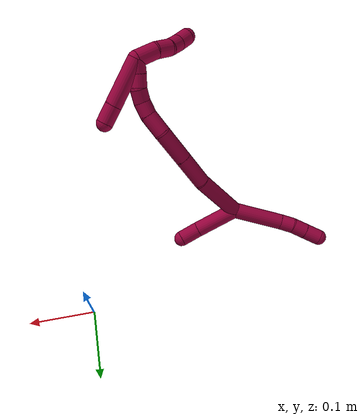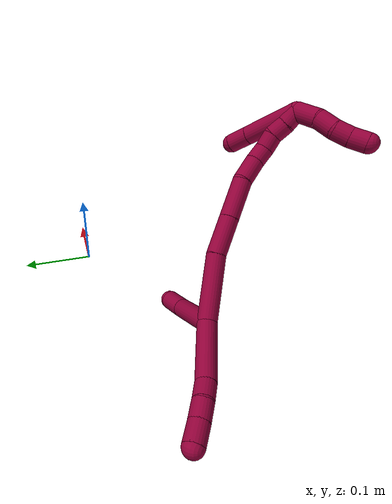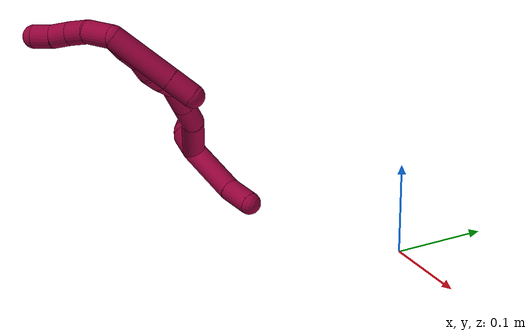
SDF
<sdf version="1.7">
 <world name="default">
  <model name="8">
   <static>0</static>
   <link name="8">
    <collision name="collision-cylinder-e_1_2_8">
     <pose>-0.01663 0.031286 0.018499 -1.03681 -0.429113 0.247343</pose>
     <geometry><cylinder><radius>0.0125</radius><length>0.079941</length></cylinder></geometry>
     <surface>
      <friction><ode><mu>1.16</mu><mu2>1.16</mu2><slip1>0</slip1><slip2>0</slip2></ode></friction>
      <contact><ode><kp>1e+06</kp><kd>1</kd><max_vel>0</max_vel><min_depth>0.001</min_depth></ode></contact>
     </surface>
    </collision>
    <visual name="visual-cylinder-e_1_2_8">
     <pose>-0.01663 0.031286 0.018499 -1.03681 -0.429113 0.247343</pose>
     <geometry><cylinder><radius>0.0125</radius><length>0.079941</length></cylinder></geometry>
     <material><ambient>0.584314 0 0.227451 1</ambient></material>
    </visual>
    <collision name="collision-cylinder-e_2_8_9">
     <pose>-0.03661 0.071938 0.041325 -1.138 -0.313948 0.201766</pose>
     <geometry><cylinder><radius>0.0125</radius><length>0.021693</length></cylinder></geometry>
     <surface>
      <friction><ode><mu>1.16</mu><mu2>1.16</mu2><slip1>0</slip1><slip2>0</slip2></ode></friction>
      <contact><ode><kp>1e+06</kp><kd>1</kd><max_vel>0</max_vel><min_depth>0.001</min_depth></ode></contact>
     </surface>
    </collision>
    <visual name="visual-cylinder-e_2_8_9">
     <pose>-0.03661 0.071938 0.041325 -1.138 -0.313948 0.201766</pose>
     <geometry><cylinder><radius>0.0125</radius><length>0.021693</length></cylinder></geometry>
     <material><ambient>0.584314 0 0.227451 1</ambient></material>
    </visual>
    <collision name="collision-cylinder-e_3_9_10">
     <pose>-0.045161 0.090795 0.04905 -1.227 -0.476337 0.338625</pose>
     <geometry><cylinder><radius>0.0125</radius><length>0.022689</length></cylinder></geometry>
     <surface>
      <friction><ode><mu>1.16</mu><mu2>1.16</mu2><slip1>0</slip1><slip2>0</slip2></ode></friction>
      <contact><ode><kp>1e+06</kp><kd>1</kd><max_vel>0</max_vel><min_depth>0.001</min_depth></ode></contact>
     </surface>
    </collision>
    <visual name="visual-cylinder-e_3_9_10">
     <pose>-0.045161 0.090795 0.04905 -1.227 -0.476337 0.338625</pose>
     <geometry><cylinder><radius>0.0125</radius><length>0.022689</length></cylinder></geometry>
     <material><ambient>0.584314 0 0.227451 1</ambient></material>
    </visual>
    <collision name="collision-cylinder-e_4_10_6">
     <pose>-0.05547 0.111454 0.056195 -1.24711 -0.409076 0.296232</pose>
     <geometry><cylinder><radius>0.0125</radius><length>0.025677</length></cylinder></geometry>
     <surface>
      <friction><ode><mu>1.16</mu><mu2>1.16</mu2><slip1>0</slip1><slip2>0</slip2></ode></friction>
      <contact><ode><kp>1e+06</kp><kd>1</kd><max_vel>0</max_vel><min_depth>0.001</min_depth></ode></contact>
     </surface>
    </collision>
    <visual name="visual-cylinder-e_4_10_6">
     <pose>-0.05547 0.111454 0.056195 -1.24711 -0.409076 0.296232</pose>
     <geometry><cylinder><radius>0.0125</radius><length>0.025677</length></cylinder></geometry>
     <material><ambient>0.584314 0 0.227451 1</ambient></material>
    </visual>
    <collision name="collision-cylinder-e_1_2_11">
     <pose>-0.003908 -0.014923 -0.030699 2.68913 -0.113985 -0.485957</pose>
     <geometry><cylinder><radius>0.0125</radius><length>0.068714</length></cylinder></geometry>
     <surface>
      <friction><ode><mu>1.16</mu><mu2>1.16</mu2><slip1>0</slip1><slip2>0</slip2></ode></friction>
      <contact><ode><kp>1e+06</kp><kd>1</kd><max_vel>0</max_vel><min_depth>0.001</min_depth></ode></contact>
     </surface>
    </collision>
    <visual name="visual-cylinder-e_1_2_11">
     <pose>-0.003908 -0.014923 -0.030699 2.68913 -0.113985 -0.485957</pose>
     <geometry><cylinder><radius>0.0125</radius><length>0.068714</length></cylinder></geometry>
     <material><ambient>0.584314 0 0.227451 1</ambient></material>
    </visual>
    <collision name="collision-cylinder-e_2_11_5">
     <pose>-0.007147 -0.035303 -0.076043 2.78492 0.04275 0.236106</pose>
     <geometry><cylinder><radius>0.0125</radius><length>0.031286</length></cylinder></geometry>
     <surface>
      <friction><ode><mu>1.16</mu><mu2>1.16</mu2><slip1>0</slip1><slip2>0</slip2></ode></friction>
      <contact><ode><kp>1e+06</kp><kd>1</kd><max_vel>0</max_vel><min_depth>0.001</min_depth></ode></contact>
     </surface>
    </collision>
    <visual name="visual-cylinder-e_2_11_5">
     <pose>-0.007147 -0.035303 -0.076043 2.78492 0.04275 0.236106</pose>
     <geometry><cylinder><radius>0.0125</radius><length>0.031286</length></cylinder></geometry>
     <material><ambient>0.584314 0 0.227451 1</ambient></material>
    </visual>
    <collision name="collision-cylinder-e_1_2_12">
     <pose>0.034798 -0.023344 -0.004781 1.77279 0.970374 1.14731</pose>
     <geometry><cylinder><radius>0.0125</radius><length>0.084349</length></cylinder></geometry>
     <surface>
      <friction><ode><mu>1.16</mu><mu2>1.16</mu2><slip1>0</slip1><slip2>0</slip2></ode></friction>
      <contact><ode><kp>1e+06</kp><kd>1</kd><max_vel>0</max_vel><min_depth>0.001</min_depth></ode></contact>
     </surface>
    </collision>
    <visual name="visual-cylinder-e_1_2_12">
     <pose>0.034798 -0.023344 -0.004781 1.77279 0.970374 1.14731</pose>
     <geometry><cylinder><radius>0.0125</radius><length>0.084349</length></cylinder></geometry>
     <material><ambient>0.584314 0 0.227451 1</ambient></material>
    </visual>
    <collision name="collision-cylinder-e_2_12_13">
     <pose>0.088892 -0.062273 -0.007876 1.4631 0.888531 0.807655</pose>
     <geometry><cylinder><radius>0.0125</radius><length>0.049722</length></cylinder></geometry>
     <surface>
      <friction><ode><mu>1.16</mu><mu2>1.16</mu2><slip1>0</slip1><slip2>0</slip2></ode></friction>
      <contact><ode><kp>1e+06</kp><kd>1</kd><max_vel>0</max_vel><min_depth>0.001</min_depth></ode></contact>
     </surface>
    </collision>
    <visual name="visual-cylinder-e_2_12_13">
     <pose>0.088892 -0.062273 -0.007876 1.4631 0.888531 0.807655</pose>
     <geometry><cylinder><radius>0.0125</radius><length>0.049722</length></cylinder></geometry>
     <material><ambient>0.584314 0 0.227451 1</ambient></material>
    </visual>
    <collision name="collision-cylinder-e_3_13_14">
     <pose>0.128214 -0.094047 -0.00445 1.46365 0.888158 0.80771</pose>
     <geometry><cylinder><radius>0.0125</radius><length>0.051619</length></cylinder></geometry>
     <surface>
      <friction><ode><mu>1.16</mu><mu2>1.16</mu2><slip1>0</slip1><slip2>0</slip2></ode></friction>
      <contact><ode><kp>1e+06</kp><kd>1</kd><max_vel>0</max_vel><min_depth>0.001</min_depth></ode></contact>
     </surface>
    </collision>
    <visual name="visual-cylinder-e_3_13_14">
     <pose>0.128214 -0.094047 -0.00445 1.46365 0.888158 0.80771</pose>
     <geometry><cylinder><radius>0.0125</radius><length>0.051619</length></cylinder></geometry>
     <material><ambient>0.584314 0 0.227451 1</ambient></material>
    </visual>
    <collision name="collision-cylinder-e_4_14_15">
     <pose>0.157897 -0.123248 -0.000323 1.38943 0.63056 0.530754</pose>
     <geometry><cylinder><radius>0.0125</radius><length>0.032759</length></cylinder></geometry>
     <surface>
      <friction><ode><mu>1.16</mu><mu2>1.16</mu2><slip1>0</slip1><slip2>0</slip2></ode></friction>
      <contact><ode><kp>1e+06</kp><kd>1</kd><max_vel>0</max_vel><min_depth>0.001</min_depth></ode></contact>
     </surface>
    </collision>
    <visual name="visual-cylinder-e_4_14_15">
     <pose>0.157897 -0.123248 -0.000323 1.38943 0.63056 0.530754</pose>
     <geometry><cylinder><radius>0.0125</radius><length>0.032759</length></cylinder></geometry>
     <material><ambient>0.584314 0 0.227451 1</ambient></material>
    </visual>
    <collision name="collision-cylinder-e_5_15_16">
     <pose>0.174354 -0.143597 0.005686 1.11217 0.69332 0.441714</pose>
     <geometry><cylinder><radius>0.0125</radius><length>0.021276</length></cylinder></geometry>
     <surface>
      <friction><ode><mu>1.16</mu><mu2>1.16</mu2><slip1>0</slip1><slip2>0</slip2></ode></friction>
      <contact><ode><kp>1e+06</kp><kd>1</kd><max_vel>0</max_vel><min_depth>0.001</min_depth></ode></contact>
     </surface>
    </collision>
    <visual name="visual-cylinder-e_5_15_16">
     <pose>0.174354 -0.143597 0.005686 1.11217 0.69332 0.441714</pose>
     <geometry><cylinder><radius>0.0125</radius><length>0.021276</length></cylinder></geometry>
     <material><ambient>0.584314 0 0.227451 1</ambient></material>
    </visual>
    <collision name="collision-cylinder-e_6_16_17">
     <pose>0.189132 -0.155337 0.01359 0.79932 0.91482 0.409985</pose>
     <geometry><cylinder><radius>0.0125</radius><length>0.020139</length></cylinder></geometry>
     <surface>
      <friction><ode><mu>1.16</mu><mu2>1.16</mu2><slip1>0</slip1><slip2>0</slip2></ode></friction>
      <contact><ode><kp>1e+06</kp><kd>1</kd><max_vel>0</max_vel><min_depth>0.001</min_depth></ode></contact>
     </surface>
    </collision>
    <visual name="visual-cylinder-e_6_16_17">
     <pose>0.189132 -0.155337 0.01359 0.79932 0.91482 0.409985</pose>
     <geometry><cylinder><radius>0.0125</radius><length>0.020139</length></cylinder></geometry>
     <material><ambient>0.584314 0 0.227451 1</ambient></material>
    </visual>
    <collision name="collision-cylinder-e_7_17_18">
     <pose>0.202878 -0.16425 0.02478 0.578429 0.610023 0.186818</pose>
     <geometry><cylinder><radius>0.0125</radius><length>0.020132</length></cylinder></geometry>
     <surface>
      <friction><ode><mu>1.16</mu><mu2>1.16</mu2><slip1>0</slip1><slip2>0</slip2></ode></friction>
      <contact><ode><kp>1e+06</kp><kd>1</kd><max_vel>0</max_vel><min_depth>0.001</min_depth></ode></contact>
     </surface>
    </collision>
    <visual name="visual-cylinder-e_7_17_18">
     <pose>0.202878 -0.16425 0.02478 0.578429 0.610023 0.186818</pose>
     <geometry><cylinder><radius>0.0125</radius><length>0.020132</length></cylinder></geometry>
     <material><ambient>0.584314 0 0.227451 1</ambient></material>
    </visual>
    <collision name="collision-cylinder-e_8_18_1">
     <pose>0.2156 -0.173052 0.037454 0.639837 0.769079 0.266555</pose>
     <geometry><cylinder><radius>0.0125</radius><length>0.020004</length></cylinder></geometry>
     <surface>
      <friction><ode><mu>1.16</mu><mu2>1.16</mu2><slip1>0</slip1><slip2>0</slip2></ode></friction>
      <contact><ode><kp>1e+06</kp><kd>1</kd><max_vel>0</max_vel><min_depth>0.001</min_depth></ode></contact>
     </surface>
    </collision>
    <visual name="visual-cylinder-e_8_18_1">
     <pose>0.2156 -0.173052 0.037454 0.639837 0.769079 0.266555</pose>
     <geometry><cylinder><radius>0.0125</radius><length>0.020004</length></cylinder></geometry>
     <material><ambient>0.584314 0 0.227451 1</ambient></material>
    </visual>
    <collision name="collision-cylinder-e_1_1_19">
     <pose>0.217447 -0.174183 0.058643 -0.202044 -0.313765 0.032066</pose>
     <geometry><cylinder><radius>0.0125</radius><length>0.033105</length></cylinder></geometry>
     <surface>
      <friction><ode><mu>1.16</mu><mu2>1.16</mu2><slip1>0</slip1><slip2>0</slip2></ode></friction>
      <contact><ode><kp>1e+06</kp><kd>1</kd><max_vel>0</max_vel><min_depth>0.001</min_depth></ode></contact>
     </surface>
    </collision>
    <visual name="visual-cylinder-e_1_1_19">
     <pose>0.217447 -0.174183 0.058643 -0.202044 -0.313765 0.032066</pose>
     <geometry><cylinder><radius>0.0125</radius><length>0.033105</length></cylinder></geometry>
     <material><ambient>0.584314 0 0.227451 1</ambient></material>
    </visual>
    <collision name="collision-cylinder-e_2_19_20">
     <pose>0.205808 -0.168952 0.084382 -0.198255 -0.555535 0.056701</pose>
     <geometry><cylinder><radius>0.0125</radius><length>0.024765</length></cylinder></geometry>
     <surface>
      <friction><ode><mu>1.16</mu><mu2>1.16</mu2><slip1>0</slip1><slip2>0</slip2></ode></friction>
      <contact><ode><kp>1e+06</kp><kd>1</kd><max_vel>0</max_vel><min_depth>0.001</min_depth></ode></contact>
     </surface>
    </collision>
    <visual name="visual-cylinder-e_2_19_20">
     <pose>0.205808 -0.168952 0.084382 -0.198255 -0.555535 0.056701</pose>
     <geometry><cylinder><radius>0.0125</radius><length>0.024765</length></cylinder></geometry>
     <material><ambient>0.584314 0 0.227451 1</ambient></material>
    </visual>
    <collision name="collision-cylinder-e_3_20_21">
     <pose>0.194194 -0.168216 0.103567 0.149482 -0.515521 -0.039476</pose>
     <geometry><cylinder><radius>0.0125</radius><length>0.020623</length></cylinder></geometry>
     <surface>
      <friction><ode><mu>1.16</mu><mu2>1.16</mu2><slip1>0</slip1><slip2>0</slip2></ode></friction>
      <contact><ode><kp>1e+06</kp><kd>1</kd><max_vel>0</max_vel><min_depth>0.001</min_depth></ode></contact>
     </surface>
    </collision>
    <visual name="visual-cylinder-e_3_20_21">
     <pose>0.194194 -0.168216 0.103567 0.149482 -0.515521 -0.039476</pose>
     <geometry><cylinder><radius>0.0125</radius><length>0.020623</length></cylinder></geometry>
     <material><ambient>0.584314 0 0.227451 1</ambient></material>
    </visual>
    <collision name="collision-cylinder-e_4_21_4">
     <pose>0.185234 -0.170439 0.122429 0.088622 -0.368852 -0.016542</pose>
     <geometry><cylinder><radius>0.0125</radius><length>0.021507</length></cylinder></geometry>
     <surface>
      <friction><ode><mu>1.16</mu><mu2>1.16</mu2><slip1>0</slip1><slip2>0</slip2></ode></friction>
      <contact><ode><kp>1e+06</kp><kd>1</kd><max_vel>0</max_vel><min_depth>0.001</min_depth></ode></contact>
     </surface>
    </collision>
    <visual name="visual-cylinder-e_4_21_4">
     <pose>0.185234 -0.170439 0.122429 0.088622 -0.368852 -0.016542</pose>
     <geometry><cylinder><radius>0.0125</radius><length>0.021507</length></cylinder></geometry>
     <material><ambient>0.584314 0 0.227451 1</ambient></material>
    </visual>
    <collision name="collision-cylinder-e_1_1_22">
     <pose>0.209803 -0.174279 0.009549 -3.05084 -0.360703 2.65345</pose>
     <geometry><cylinder><radius>0.0125</radius><length>0.072268</length></cylinder></geometry>
     <surface>
      <friction><ode><mu>1.16</mu><mu2>1.16</mu2><slip1>0</slip1><slip2>0</slip2></ode></friction>
      <contact><ode><kp>1e+06</kp><kd>1</kd><max_vel>0</max_vel><min_depth>0.001</min_depth></ode></contact>
     </surface>
    </collision>
    <visual name="visual-cylinder-e_1_1_22">
     <pose>0.209803 -0.174279 0.009549 -3.05084 -0.360703 2.65345</pose>
     <geometry><cylinder><radius>0.0125</radius><length>0.072268</length></cylinder></geometry>
     <material><ambient>0.584314 0 0.227451 1</ambient></material>
    </visual>
    <collision name="collision-cylinder-e_2_22_3">
     <pose>0.192163 -0.170047 -0.037044 -3.0515 -0.360203 2.65622</pose>
     <geometry><cylinder><radius>0.0125</radius><length>0.027732</length></cylinder></geometry>
     <surface>
      <friction><ode><mu>1.16</mu><mu2>1.16</mu2><slip1>0</slip1><slip2>0</slip2></ode></friction>
      <contact><ode><kp>1e+06</kp><kd>1</kd><max_vel>0</max_vel><min_depth>0.001</min_depth></ode></contact>
     </surface>
    </collision>
    <visual name="visual-cylinder-e_2_22_3">
     <pose>0.192163 -0.170047 -0.037044 -3.0515 -0.360203 2.65622</pose>
     <geometry><cylinder><radius>0.0125</radius><length>0.027732</length></cylinder></geometry>
     <material><ambient>0.584314 0 0.227451 1</ambient></material>
    </visual>
    <collision name="collision-sphere-3">
     <pose>0.187276 -0.16888 -0.049967 0 -0 0</pose>
     <geometry><sphere><radius>0.0125</radius></sphere></geometry>
     <surface>
      <friction><ode><mu>1.16</mu><mu2>1.16</mu2><slip1>0</slip1><slip2>0</slip2></ode></friction>
      <contact><ode><kp>1e+06</kp><kd>1</kd><max_vel>0</max_vel><min_depth>0.001</min_depth></ode></contact>
     </surface>
    </collision>
    <visual name="visual-sphere-3">
     <pose>0.187276 -0.16888 -0.049967 0 -0 0</pose>
     <geometry><sphere><radius>0.0125</radius></sphere></geometry>
     <material><ambient>0.584314 0 0.227451 1</ambient></material>
    </visual>
    <collision name="collision-sphere-22">
     <pose>0.197051 -0.171215 -0.024121 0 -0 0</pose>
     <geometry><sphere><radius>0.0125</radius></sphere></geometry>
     <surface>
      <friction><ode><mu>1.16</mu><mu2>1.16</mu2><slip1>0</slip1><slip2>0</slip2></ode></friction>
      <contact><ode><kp>1e+06</kp><kd>1</kd><max_vel>0</max_vel><min_depth>0.001</min_depth></ode></contact>
     </surface>
    </collision>
    <visual name="visual-sphere-22">
     <pose>0.197051 -0.171215 -0.024121 0 -0 0</pose>
     <geometry><sphere><radius>0.0125</radius></sphere></geometry>
     <material><ambient>0.584314 0 0.227451 1</ambient></material>
    </visual>
    <collision name="collision-sphere-4">
     <pose>0.181357 -0.171327 0.13242 0 -0 0</pose>
     <geometry><sphere><radius>0.0125</radius></sphere></geometry>
     <surface>
      <friction><ode><mu>1.16</mu><mu2>1.16</mu2><slip1>0</slip1><slip2>0</slip2></ode></friction>
      <contact><ode><kp>1e+06</kp><kd>1</kd><max_vel>0</max_vel><min_depth>0.001</min_depth></ode></contact>
     </surface>
    </collision>
    <visual name="visual-sphere-4">
     <pose>0.181357 -0.171327 0.13242 0 -0 0</pose>
     <geometry><sphere><radius>0.0125</radius></sphere></geometry>
     <material><ambient>0.584314 0 0.227451 1</ambient></material>
    </visual>
    <collision name="collision-sphere-21">
     <pose>0.189111 -0.169552 0.112438 0 -0 0</pose>
     <geometry><sphere><radius>0.0125</radius></sphere></geometry>
     <surface>
      <friction><ode><mu>1.16</mu><mu2>1.16</mu2><slip1>0</slip1><slip2>0</slip2></ode></friction>
      <contact><ode><kp>1e+06</kp><kd>1</kd><max_vel>0</max_vel><min_depth>0.001</min_depth></ode></contact>
     </surface>
    </collision>
    <visual name="visual-sphere-21">
     <pose>0.189111 -0.169552 0.112438 0 -0 0</pose>
     <geometry><sphere><radius>0.0125</radius></sphere></geometry>
     <material><ambient>0.584314 0 0.227451 1</ambient></material>
    </visual>
    <collision name="collision-sphere-20">
     <pose>0.199278 -0.166879 0.094696 0 -0 0</pose>
     <geometry><sphere><radius>0.0125</radius></sphere></geometry>
     <surface>
      <friction><ode><mu>1.16</mu><mu2>1.16</mu2><slip1>0</slip1><slip2>0</slip2></ode></friction>
      <contact><ode><kp>1e+06</kp><kd>1</kd><max_vel>0</max_vel><min_depth>0.001</min_depth></ode></contact>
     </surface>
    </collision>
    <visual name="visual-sphere-20">
     <pose>0.199278 -0.166879 0.094696 0 -0 0</pose>
     <geometry><sphere><radius>0.0125</radius></sphere></geometry>
     <material><ambient>0.584314 0 0.227451 1</ambient></material>
    </visual>
    <collision name="collision-sphere-11">
     <pose>-0.007815 -0.029846 -0.061398 0 -0 0</pose>
     <geometry><sphere><radius>0.0125</radius></sphere></geometry>
     <surface>
      <friction><ode><mu>1.16</mu><mu2>1.16</mu2><slip1>0</slip1><slip2>0</slip2></ode></friction>
      <contact><ode><kp>1e+06</kp><kd>1</kd><max_vel>0</max_vel><min_depth>0.001</min_depth></ode></contact>
     </surface>
    </collision>
    <visual name="visual-sphere-11">
     <pose>-0.007815 -0.029846 -0.061398 0 -0 0</pose>
     <geometry><sphere><radius>0.0125</radius></sphere></geometry>
     <material><ambient>0.584314 0 0.227451 1</ambient></material>
    </visual>
    <collision name="collision-sphere-6">
     <pose>-0.060577 0.122622 0.059941 0 -0 0</pose>
     <geometry><sphere><radius>0.0125</radius></sphere></geometry>
     <surface>
      <friction><ode><mu>1.16</mu><mu2>1.16</mu2><slip1>0</slip1><slip2>0</slip2></ode></friction>
      <contact><ode><kp>1e+06</kp><kd>1</kd><max_vel>0</max_vel><min_depth>0.001</min_depth></ode></contact>
     </surface>
    </collision>
    <visual name="visual-sphere-6">
     <pose>-0.060577 0.122622 0.059941 0 -0 0</pose>
     <geometry><sphere><radius>0.0125</radius></sphere></geometry>
     <material><ambient>0.584314 0 0.227451 1</ambient></material>
    </visual>
    <collision name="collision-sphere-10">
     <pose>-0.050363 0.100286 0.052448 0 -0 0</pose>
     <geometry><sphere><radius>0.0125</radius></sphere></geometry>
     <surface>
      <friction><ode><mu>1.16</mu><mu2>1.16</mu2><slip1>0</slip1><slip2>0</slip2></ode></friction>
      <contact><ode><kp>1e+06</kp><kd>1</kd><max_vel>0</max_vel><min_depth>0.001</min_depth></ode></contact>
     </surface>
    </collision>
    <visual name="visual-sphere-10">
     <pose>-0.050363 0.100286 0.052448 0 -0 0</pose>
     <geometry><sphere><radius>0.0125</radius></sphere></geometry>
     <material><ambient>0.584314 0 0.227451 1</ambient></material>
    </visual>
    <collision name="collision-sphere-9">
     <pose>-0.039959 0.081303 0.045652 0 -0 0</pose>
     <geometry><sphere><radius>0.0125</radius></sphere></geometry>
     <surface>
      <friction><ode><mu>1.16</mu><mu2>1.16</mu2><slip1>0</slip1><slip2>0</slip2></ode></friction>
      <contact><ode><kp>1e+06</kp><kd>1</kd><max_vel>0</max_vel><min_depth>0.001</min_depth></ode></contact>
     </surface>
    </collision>
    <visual name="visual-sphere-9">
     <pose>-0.039959 0.081303 0.045652 0 -0 0</pose>
     <geometry><sphere><radius>0.0125</radius></sphere></geometry>
     <material><ambient>0.584314 0 0.227451 1</ambient></material>
    </visual>
    <collision name="collision-sphere-2">
     <geometry><sphere><radius>0.0125</radius></sphere></geometry>
     <surface>
      <friction><ode><mu>1.16</mu><mu2>1.16</mu2><slip1>0</slip1><slip2>0</slip2></ode></friction>
      <contact><ode><kp>1e+06</kp><kd>1</kd><max_vel>0</max_vel><min_depth>0.001</min_depth></ode></contact>
     </surface>
    </collision>
    <visual name="visual-sphere-2">
     <geometry><sphere><radius>0.0125</radius></sphere></geometry>
     <material><ambient>0.584314 0 0.227451 1</ambient></material>
    </visual>
    <collision name="collision-sphere-19">
     <pose>0.212339 -0.171024 0.074067 0 -0 0</pose>
     <geometry><sphere><radius>0.0125</radius></sphere></geometry>
     <surface>
      <friction><ode><mu>1.16</mu><mu2>1.16</mu2><slip1>0</slip1><slip2>0</slip2></ode></friction>
      <contact><ode><kp>1e+06</kp><kd>1</kd><max_vel>0</max_vel><min_depth>0.001</min_depth></ode></contact>
     </surface>
    </collision>
    <visual name="visual-sphere-19">
     <pose>0.212339 -0.171024 0.074067 0 -0 0</pose>
     <geometry><sphere><radius>0.0125</radius></sphere></geometry>
     <material><ambient>0.584314 0 0.227451 1</ambient></material>
    </visual>
    <collision name="collision-sphere-8">
     <pose>-0.03326 0.062573 0.036998 0 -0 0</pose>
     <geometry><sphere><radius>0.0125</radius></sphere></geometry>
     <surface>
      <friction><ode><mu>1.16</mu><mu2>1.16</mu2><slip1>0</slip1><slip2>0</slip2></ode></friction>
      <contact><ode><kp>1e+06</kp><kd>1</kd><max_vel>0</max_vel><min_depth>0.001</min_depth></ode></contact>
     </surface>
    </collision>
    <visual name="visual-sphere-8">
     <pose>-0.03326 0.062573 0.036998 0 -0 0</pose>
     <geometry><sphere><radius>0.0125</radius></sphere></geometry>
     <material><ambient>0.584314 0 0.227451 1</ambient></material>
    </visual>
    <collision name="collision-sphere-5">
     <pose>-0.006478 -0.040759 -0.090689 0 -0 0</pose>
     <geometry><sphere><radius>0.0125</radius></sphere></geometry>
     <surface>
      <friction><ode><mu>1.16</mu><mu2>1.16</mu2><slip1>0</slip1><slip2>0</slip2></ode></friction>
      <contact><ode><kp>1e+06</kp><kd>1</kd><max_vel>0</max_vel><min_depth>0.001</min_depth></ode></contact>
     </surface>
    </collision>
    <visual name="visual-sphere-5">
     <pose>-0.006478 -0.040759 -0.090689 0 -0 0</pose>
     <geometry><sphere><radius>0.0125</radius></sphere></geometry>
     <material><ambient>0.584314 0 0.227451 1</ambient></material>
    </visual>
    <collision name="collision-sphere-12">
     <pose>0.069596 -0.046688 -0.009561 0 -0 0</pose>
     <geometry><sphere><radius>0.0125</radius></sphere></geometry>
     <surface>
      <friction><ode><mu>1.16</mu><mu2>1.16</mu2><slip1>0</slip1><slip2>0</slip2></ode></friction>
      <contact><ode><kp>1e+06</kp><kd>1</kd><max_vel>0</max_vel><min_depth>0.001</min_depth></ode></contact>
     </surface>
    </collision>
    <visual name="visual-sphere-12">
     <pose>0.069596 -0.046688 -0.009561 0 -0 0</pose>
     <geometry><sphere><radius>0.0125</radius></sphere></geometry>
     <material><ambient>0.584314 0 0.227451 1</ambient></material>
    </visual>
    <collision name="collision-sphere-13">
     <pose>0.108188 -0.077858 -0.006191 0 -0 0</pose>
     <geometry><sphere><radius>0.0125</radius></sphere></geometry>
     <surface>
      <friction><ode><mu>1.16</mu><mu2>1.16</mu2><slip1>0</slip1><slip2>0</slip2></ode></friction>
      <contact><ode><kp>1e+06</kp><kd>1</kd><max_vel>0</max_vel><min_depth>0.001</min_depth></ode></contact>
     </surface>
    </collision>
    <visual name="visual-sphere-13">
     <pose>0.108188 -0.077858 -0.006191 0 -0 0</pose>
     <geometry><sphere><radius>0.0125</radius></sphere></geometry>
     <material><ambient>0.584314 0 0.227451 1</ambient></material>
    </visual>
    <collision name="collision-sphere-14">
     <pose>0.14824 -0.110235 -0.002709 0 -0 0</pose>
     <geometry><sphere><radius>0.0125</radius></sphere></geometry>
     <surface>
      <friction><ode><mu>1.16</mu><mu2>1.16</mu2><slip1>0</slip1><slip2>0</slip2></ode></friction>
      <contact><ode><kp>1e+06</kp><kd>1</kd><max_vel>0</max_vel><min_depth>0.001</min_depth></ode></contact>
     </surface>
    </collision>
    <visual name="visual-sphere-14">
     <pose>0.14824 -0.110235 -0.002709 0 -0 0</pose>
     <geometry><sphere><radius>0.0125</radius></sphere></geometry>
     <material><ambient>0.584314 0 0.227451 1</ambient></material>
    </visual>
    <collision name="collision-sphere-15">
     <pose>0.167555 -0.136261 0.002064 0 -0 0</pose>
     <geometry><sphere><radius>0.0125</radius></sphere></geometry>
     <surface>
      <friction><ode><mu>1.16</mu><mu2>1.16</mu2><slip1>0</slip1><slip2>0</slip2></ode></friction>
      <contact><ode><kp>1e+06</kp><kd>1</kd><max_vel>0</max_vel><min_depth>0.001</min_depth></ode></contact>
     </surface>
    </collision>
    <visual name="visual-sphere-15">
     <pose>0.167555 -0.136261 0.002064 0 -0 0</pose>
     <geometry><sphere><radius>0.0125</radius></sphere></geometry>
     <material><ambient>0.584314 0 0.227451 1</ambient></material>
    </visual>
    <collision name="collision-sphere-16">
     <pose>0.181152 -0.150934 0.009308 0 -0 0</pose>
     <geometry><sphere><radius>0.0125</radius></sphere></geometry>
     <surface>
      <friction><ode><mu>1.16</mu><mu2>1.16</mu2><slip1>0</slip1><slip2>0</slip2></ode></friction>
      <contact><ode><kp>1e+06</kp><kd>1</kd><max_vel>0</max_vel><min_depth>0.001</min_depth></ode></contact>
     </surface>
    </collision>
    <visual name="visual-sphere-16">
     <pose>0.181152 -0.150934 0.009308 0 -0 0</pose>
     <geometry><sphere><radius>0.0125</radius></sphere></geometry>
     <material><ambient>0.584314 0 0.227451 1</ambient></material>
    </visual>
    <collision name="collision-sphere-17">
     <pose>0.197111 -0.15974 0.017872 0 -0 0</pose>
     <geometry><sphere><radius>0.0125</radius></sphere></geometry>
     <surface>
      <friction><ode><mu>1.16</mu><mu2>1.16</mu2><slip1>0</slip1><slip2>0</slip2></ode></friction>
      <contact><ode><kp>1e+06</kp><kd>1</kd><max_vel>0</max_vel><min_depth>0.001</min_depth></ode></contact>
     </surface>
    </collision>
    <visual name="visual-sphere-17">
     <pose>0.197111 -0.15974 0.017872 0 -0 0</pose>
     <geometry><sphere><radius>0.0125</radius></sphere></geometry>
     <material><ambient>0.584314 0 0.227451 1</ambient></material>
    </visual>
    <collision name="collision-sphere-18">
     <pose>0.208644 -0.168761 0.031688 0 -0 0</pose>
     <geometry><sphere><radius>0.0125</radius></sphere></geometry>
     <surface>
      <friction><ode><mu>1.16</mu><mu2>1.16</mu2><slip1>0</slip1><slip2>0</slip2></ode></friction>
      <contact><ode><kp>1e+06</kp><kd>1</kd><max_vel>0</max_vel><min_depth>0.001</min_depth></ode></contact>
     </surface>
    </collision>
    <visual name="visual-sphere-18">
     <pose>0.208644 -0.168761 0.031688 0 -0 0</pose>
     <geometry><sphere><radius>0.0125</radius></sphere></geometry>
     <material><ambient>0.584314 0 0.227451 1</ambient></material>
    </visual>
    <collision name="collision-sphere-1">
     <pose>0.222556 -0.177343 0.043219 0 -0 0</pose>
     <geometry><sphere><radius>0.0125</radius></sphere></geometry>
     <surface>
      <friction><ode><mu>1.16</mu><mu2>1.16</mu2><slip1>0</slip1><slip2>0</slip2></ode></friction>
      <contact><ode><kp>1e+06</kp><kd>1</kd><max_vel>0</max_vel><min_depth>0.001</min_depth></ode></contact>
     </surface>
    </collision>
    <visual name="visual-sphere-1">
     <pose>0.222556 -0.177343 0.043219 0 -0 0</pose>
     <geometry><sphere><radius>0.0125</radius></sphere></geometry>
     <material><ambient>0.584314 0 0.227451 1</ambient></material>
    </visual>
    <inertial>
     <pose>0.094363 -0.072602 0.012684 0 -0 0</pose>
     <mass>0.75</mass>
     <inertia><ixx>0.000148</ixx><ixy>0</ixy><ixz>0</ixz><iyy>0.000155</iyy><iyz>0</iyz><izz>-7e-06</izz></inertia>
    </inertial>
   </link>
   <pose>-0.250141 -0.11599 0.044514 0.399129 -1.30988 0.244666</pose>
  </model>
 </world>
</sdf>
